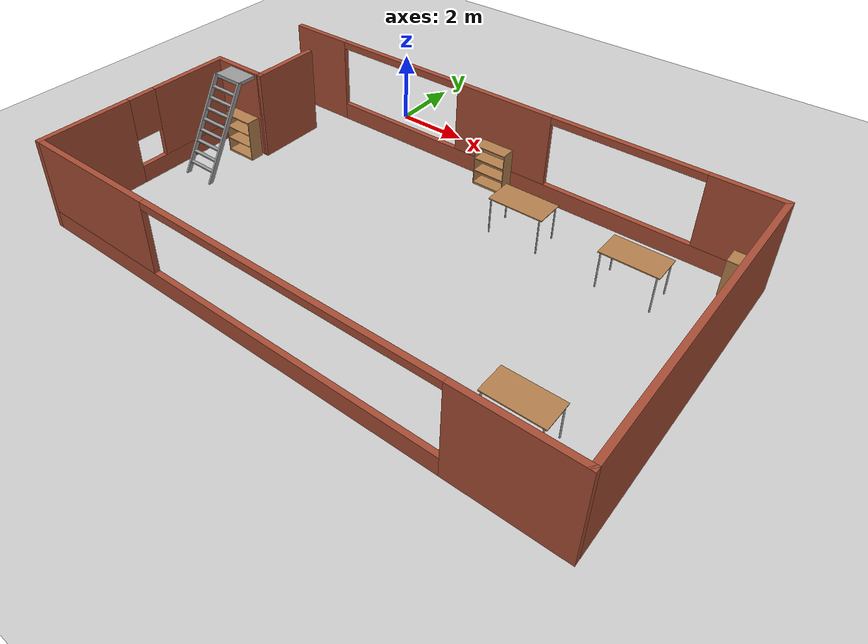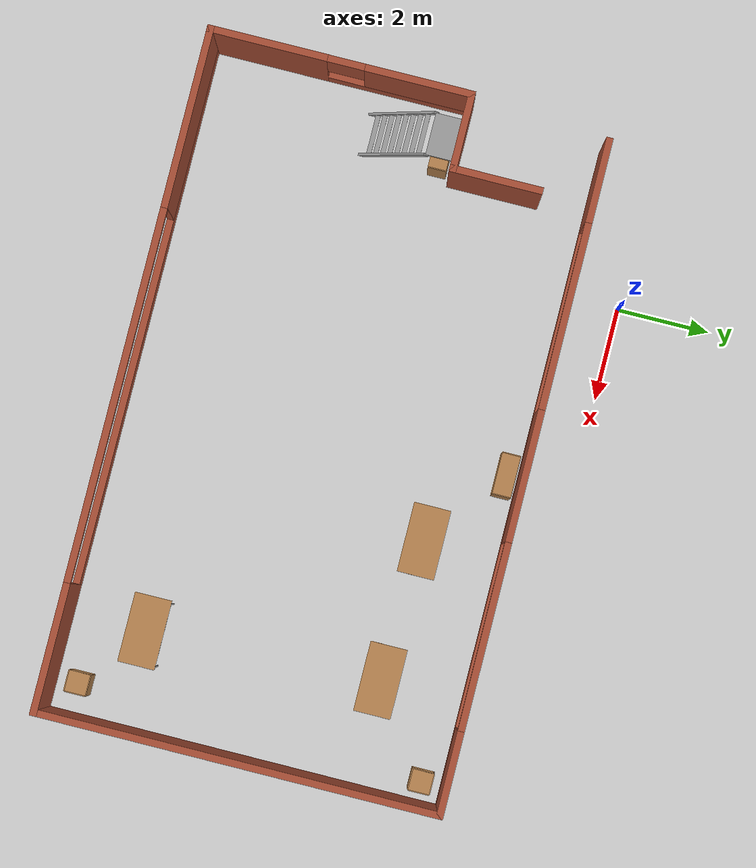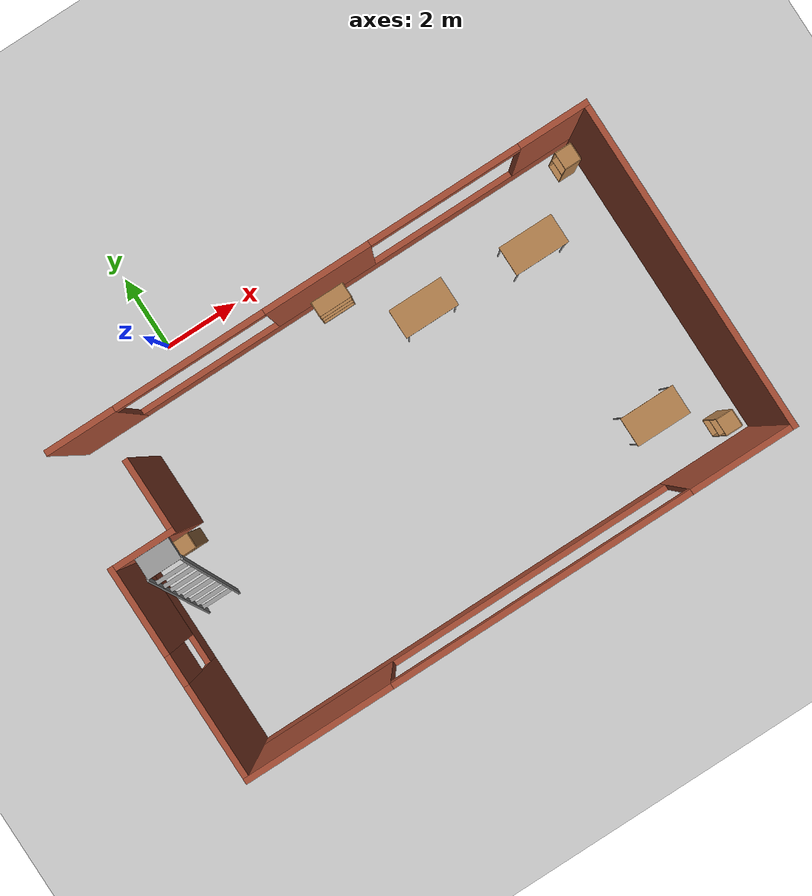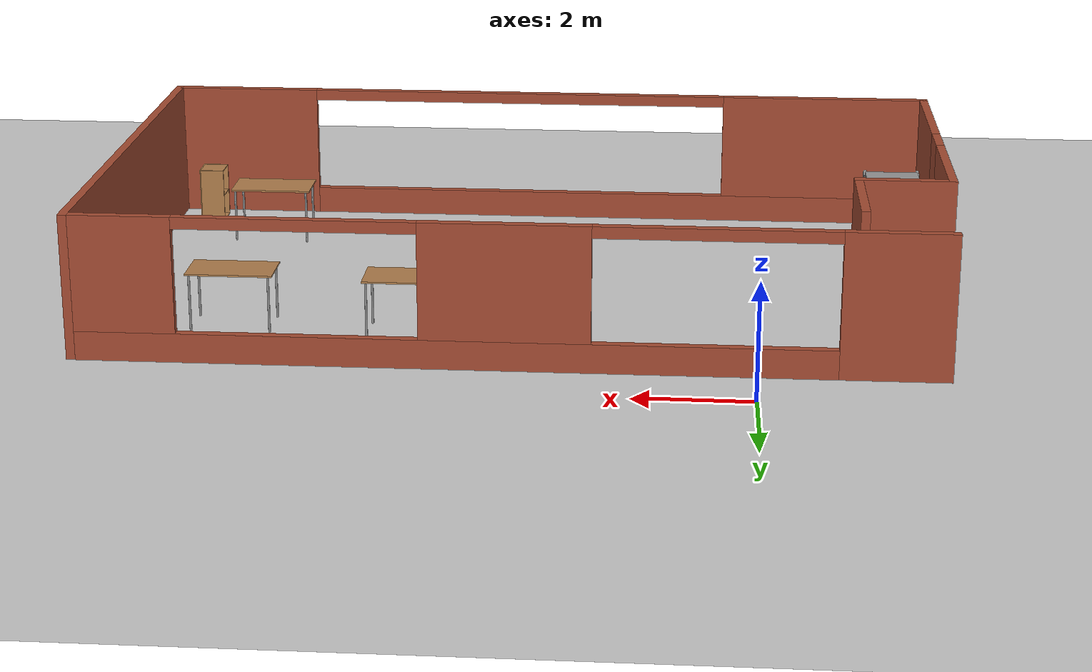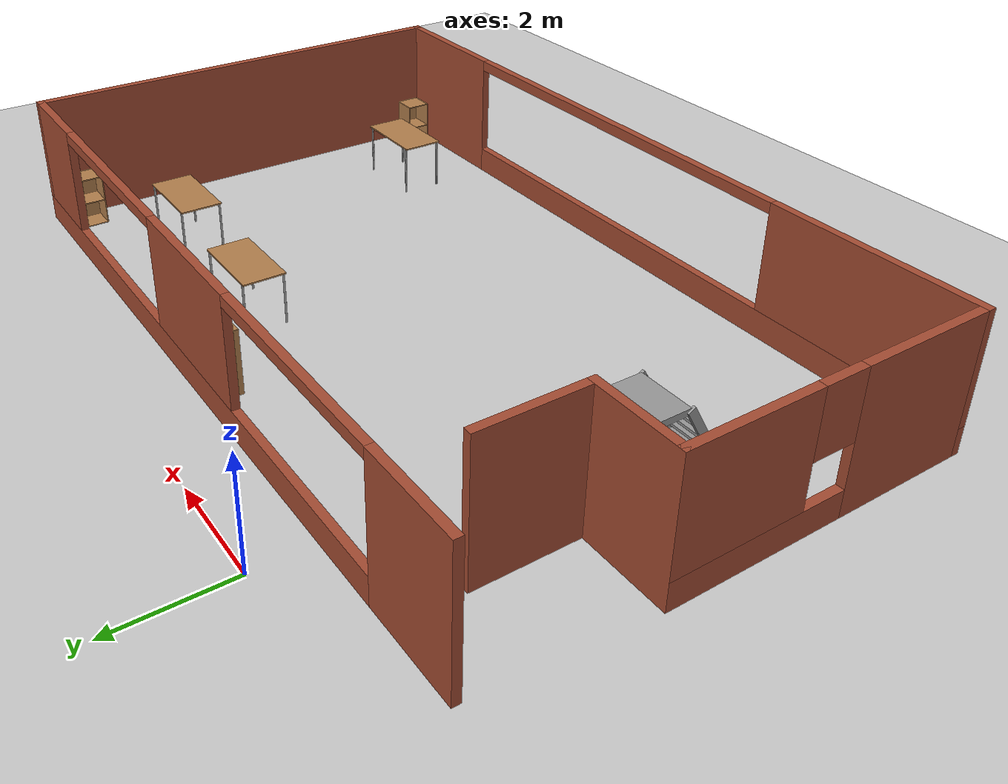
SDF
<sdf version="1.6">
 <world name="default">
  <light name="sun" type="directional">
   <pose>0 0 10 0 -0 0</pose>
   <diffuse>0.8 0.8 0.8 1</diffuse>
   <specular>0.2 0.2 0.2 1</specular>
   <attenuation>
    <range>1000</range>
    <constant>0.9</constant>
    <linear>0.01</linear>
    <quadratic>0.001</quadratic>
   </attenuation>
   <direction>-0.5 0.1 -0.9</direction>
  </light>
  <model name="ground_plane">
   <static>1</static>
   <link name="link">
    <collision name="collision">
     <geometry><plane><normal>0 0 1</normal><size>100 100</size></plane></geometry>
     <surface>
      <contact><collide_bitmask>65535</collide_bitmask></contact>
      <friction><ode><mu>100</mu><mu2>50</mu2></ode></friction>
     </surface>
    </collision>
    <visual name="visual">
     <cast_shadows>0</cast_shadows>
     <geometry><plane><normal>0 0 1</normal><size>100 100</size></plane></geometry>
     <material>
      <script><uri>file://media/materials/scripts/gazebo.material</uri><name>Gazebo/Grey</name></script>
     </material>
    </visual>
   </link>
  </model>
  <gravity>0 0 -9.8</gravity>
  <magnetic_field>6e-06 2.3e-05 -4.2e-05</magnetic_field>
  <atmosphere type="adiabatic"/>
  <physics name="default_physics" default="0" type="ode">
   <max_step_size>0.001</max_step_size>
   <real_time_factor>1</real_time_factor>
   <real_time_update_rate>1000</real_time_update_rate>
  </physics>
  <scene><ambient>0.4 0.4 0.4 1</ambient><background>0.7 0.7 0.7 1</background><shadows>1</shadows></scene>
  <spherical_coordinates>
   <surface_model>EARTH_WGS84</surface_model>
   <latitude_deg>0</latitude_deg>
   <longitude_deg>0</longitude_deg>
   <elevation>0</elevation>
   <heading_deg>0</heading_deg>
  </spherical_coordinates>
  <model name="BKSBR">
   <pose>3.96 -5.43 0 0 -0 0</pose>
   <link name="Wall_0">
    <pose>0.125 4.3 0 0 -0 0</pose>
    <visual name="Wall_0_Visual_0">
     <pose>-6.33425 0 1.25 0 -0 0</pose>
     <geometry><box><size>1.83149 0.15 2.5</size></box></geometry>
     <material>
      <script><uri>file://media/materials/scripts/gazebo.material</uri><name>Gazebo/Bricks</name></script>
      <ambient>1 1 1 1</ambient>
     </material>
     <meta><layer>0</layer></meta>
    </visual>
    <collision name="Wall_0_Collision_0">
     <geometry><box><size>1.83149 0.15 2.5</size></box></geometry>
     <pose>-6.33425 0 1.25 0 -0 0</pose>
    </collision>
    <visual name="Wall_0_Visual_1">
     <pose>0.915747 0 0.25 0 -0 0</pose>
     <geometry><box><size>12.6685 0.15 0.5</size></box></geometry>
     <material>
      <script><uri>file://media/materials/scripts/gazebo.material</uri><name>Gazebo/Bricks</name></script>
      <ambient>1 1 1 1</ambient>
     </material>
     <meta><layer>0</layer></meta>
    </visual>
    <collision name="Wall_0_Collision_1">
     <geometry><box><size>12.6685 0.15 0.5</size></box></geometry>
     <pose>0.915747 0 0.25 0 -0 0</pose>
    </collision>
    <visual name="Wall_0_Visual_2">
     <pose>-0.007696 0 1.5 0 -0 0</pose>
     <geometry><box><size>2.82162 0.15 2</size></box></geometry>
     <material>
      <script><uri>file://media/materials/scripts/gazebo.material</uri><name>Gazebo/Bricks</name></script>
      <ambient>1 1 1 1</ambient>
     </material>
     <meta><layer>0</layer></meta>
    </visual>
    <collision name="Wall_0_Collision_2">
     <geometry><box><size>2.82162 0.15 2</size></box></geometry>
     <pose>-0.007696 0 1.5 0 -0 0</pose>
    </collision>
    <visual name="Wall_0_Visual_3">
     <pose>6.32656 0 1.5 0 -0 0</pose>
     <geometry><box><size>1.84689 0.15 2</size></box></geometry>
     <material>
      <script><uri>file://media/materials/scripts/gazebo.material</uri><name>Gazebo/Bricks</name></script>
      <ambient>1 1 1 1</ambient>
     </material>
     <meta><layer>0</layer></meta>
    </visual>
    <collision name="Wall_0_Collision_3">
     <geometry><box><size>1.84689 0.15 2</size></box></geometry>
     <pose>6.32656 0 1.5 0 -0 0</pose>
    </collision>
    <visual name="Wall_0_Visual_4">
     <pose>-3.41851 0 2.4 0 -0 0</pose>
     <geometry><box><size>4 0.15 0.2</size></box></geometry>
     <material>
      <script><uri>file://media/materials/scripts/gazebo.material</uri><name>Gazebo/Bricks</name></script>
      <ambient>1 1 1 1</ambient>
     </material>
     <meta><layer>0</layer></meta>
    </visual>
    <collision name="Wall_0_Collision_4">
     <geometry><box><size>4 0.15 0.2</size></box></geometry>
     <pose>-3.41851 0 2.4 0 -0 0</pose>
    </collision>
    <visual name="Wall_0_Visual_5">
     <pose>3.40311 0 2.4 0 -0 0</pose>
     <geometry><box><size>4 0.15 0.2</size></box></geometry>
     <material>
      <script><uri>file://media/materials/scripts/gazebo.material</uri><name>Gazebo/Bricks</name></script>
      <ambient>1 1 1 1</ambient>
     </material>
     <meta><layer>0</layer></meta>
    </visual>
    <collision name="Wall_0_Collision_5">
     <geometry><box><size>4 0.15 0.2</size></box></geometry>
     <pose>3.40311 0 2.4 0 -0 0</pose>
    </collision>
   </link>
   <link name="Wall_1">
    <collision name="Wall_1_Collision">
     <geometry><box><size>8.75 0.15 2.5</size></box></geometry>
     <pose>0 0 1.25 0 -0 0</pose>
    </collision>
    <visual name="Wall_1_Visual">
     <pose>0 0 1.25 0 -0 0</pose>
     <geometry><box><size>8.75 0.15 2.5</size></box></geometry>
     <material>
      <script><uri>file://media/materials/scripts/gazebo.material</uri><name>Gazebo/Bricks</name></script>
      <ambient>1 1 1 1</ambient>
     </material>
     <meta><layer>0</layer></meta>
    </visual>
    <pose>7.3 0 0 0 0 -1.5708</pose>
   </link>
   <link name="Wall_2">
    <pose>0 -4.3 0 0 -0 3.14159</pose>
    <visual name="Wall_2_Visual_0">
     <pose>-5.96793 0 1.25 0 -0 0</pose>
     <geometry><box><size>2.81414 0.15 2.5</size></box></geometry>
     <material>
      <script><uri>file://media/materials/scripts/gazebo.material</uri><name>Gazebo/Bricks</name></script>
      <ambient>1 1 1 1</ambient>
     </material>
     <meta><layer>0</layer></meta>
    </visual>
    <collision name="Wall_2_Collision_0">
     <geometry><box><size>2.81414 0.15 2.5</size></box></geometry>
     <pose>-5.96793 0 1.25 0 -0 0</pose>
    </collision>
    <visual name="Wall_2_Visual_1">
     <pose>1.40707 0 0.25 0 -0 0</pose>
     <geometry><box><size>11.9359 0.15 0.5</size></box></geometry>
     <material>
      <script><uri>file://media/materials/scripts/gazebo.material</uri><name>Gazebo/Bricks</name></script>
      <ambient>1 1 1 1</ambient>
     </material>
     <meta><layer>0</layer></meta>
    </visual>
    <collision name="Wall_2_Collision_1">
     <geometry><box><size>11.9359 0.15 0.5</size></box></geometry>
     <pose>1.40707 0 0.25 0 -0 0</pose>
    </collision>
    <visual name="Wall_2_Visual_2">
     <pose>5.40707 0 1.5 0 -0 0</pose>
     <geometry><box><size>3.93586 0.15 2</size></box></geometry>
     <material>
      <script><uri>file://media/materials/scripts/gazebo.material</uri><name>Gazebo/Bricks</name></script>
      <ambient>1 1 1 1</ambient>
     </material>
     <meta><layer>0</layer></meta>
    </visual>
    <collision name="Wall_2_Collision_2">
     <geometry><box><size>3.93586 0.15 2</size></box></geometry>
     <pose>5.40707 0 1.5 0 -0 0</pose>
    </collision>
    <visual name="Wall_2_Visual_3">
     <pose>-0.560862 0 2.4 0 -0 0</pose>
     <geometry><box><size>8 0.15 0.2</size></box></geometry>
     <material>
      <script><uri>file://media/materials/scripts/gazebo.material</uri><name>Gazebo/Bricks</name></script>
      <ambient>1 1 1 1</ambient>
     </material>
     <meta><layer>0</layer></meta>
    </visual>
    <collision name="Wall_2_Collision_3">
     <geometry><box><size>8 0.15 0.2</size></box></geometry>
     <pose>-0.560862 0 2.4 0 -0 0</pose>
    </collision>
   </link>
   <link name="Wall_3">
    <pose>-7.3 -1.5 0 0 -0 1.5708</pose>
    <visual name="Wall_3_Visual_0">
     <pose>-1.58135 0 1.25 0 -0 0</pose>
     <geometry><box><size>2.58731 0.15 2.5</size></box></geometry>
     <material>
      <script><uri>file://media/materials/scripts/gazebo.material</uri><name>Gazebo/Bricks</name></script>
      <ambient>1 1 1 1</ambient>
     </material>
     <meta><layer>0</layer></meta>
    </visual>
    <collision name="Wall_3_Collision_0">
     <geometry><box><size>2.58731 0.15 2.5</size></box></geometry>
     <pose>-1.58135 0 1.25 0 -0 0</pose>
    </collision>
    <visual name="Wall_3_Visual_1">
     <pose>1.29365 0 0.25 0 -0 0</pose>
     <geometry><box><size>3.16269 0.15 0.5</size></box></geometry>
     <material>
      <script><uri>file://media/materials/scripts/gazebo.material</uri><name>Gazebo/Bricks</name></script>
      <ambient>1 1 1 1</ambient>
     </material>
     <meta><layer>0</layer></meta>
    </visual>
    <collision name="Wall_3_Collision_1">
     <geometry><box><size>3.16269 0.15 0.5</size></box></geometry>
     <pose>1.29365 0 0.25 0 -0 0</pose>
    </collision>
    <visual name="Wall_3_Visual_2">
     <pose>1.69365 0 1.5 0 -0 0</pose>
     <geometry><box><size>2.36269 0.15 2</size></box></geometry>
     <material>
      <script><uri>file://media/materials/scripts/gazebo.material</uri><name>Gazebo/Bricks</name></script>
      <ambient>1 1 1 1</ambient>
     </material>
     <meta><layer>0</layer></meta>
    </visual>
    <collision name="Wall_3_Collision_2">
     <geometry><box><size>2.36269 0.15 2</size></box></geometry>
     <pose>1.69365 0 1.5 0 -0 0</pose>
    </collision>
    <visual name="Wall_3_Visual_3">
     <pose>0.11231 0 1.9 0 -0 0</pose>
     <geometry><box><size>0.8 0.15 1.2</size></box></geometry>
     <material>
      <script><uri>file://media/materials/scripts/gazebo.material</uri><name>Gazebo/Bricks</name></script>
      <ambient>1 1 1 1</ambient>
     </material>
     <meta><layer>0</layer></meta>
    </visual>
    <collision name="Wall_3_Collision_3">
     <geometry><box><size>0.8 0.15 1.2</size></box></geometry>
     <pose>0.11231 0 1.9 0 -0 0</pose>
    </collision>
   </link>
   <link name="Wall_4">
    <collision name="Wall_4_Collision">
     <geometry><box><size>1.75 0.15 2.5</size></box></geometry>
     <pose>0 0 1.25 0 -0 0</pose>
    </collision>
    <visual name="Wall_4_Visual">
     <pose>0 0 1.25 0 -0 0</pose>
     <geometry><box><size>1.75 0.15 2.5</size></box></geometry>
     <material>
      <script><uri>file://media/materials/scripts/gazebo.material</uri><name>Gazebo/Bricks</name></script>
      <ambient>1 1 1 1</ambient>
     </material>
     <meta><layer>0</layer></meta>
    </visual>
    <pose>-6.5 1.3 0 0 -0 0</pose>
   </link>
   <link name="Wall_5">
    <collision name="Wall_5_Collision">
     <geometry><box><size>2 0.15 2.5</size></box></geometry>
     <pose>0 0 1.25 0 -0 0</pose>
    </collision>
    <visual name="Wall_5_Visual">
     <pose>0 0 1.25 0 -0 0</pose>
     <geometry><box><size>2 0.15 2.5</size></box></geometry>
     <material>
      <script><uri>file://media/materials/scripts/gazebo.material</uri><name>Gazebo/Bricks</name></script>
      <ambient>1 1 1 1</ambient>
     </material>
     <meta><layer>0</layer></meta>
    </visual>
    <pose>-5.7 2.225 0 0 -0 1.5708</pose>
   </link>
   <static>1</static>
  </model>
  <model name="bookshelf">
   <static>1</static>
   <link name="link">
    <inertial><mass>1</mass></inertial>
    <collision name="back">
     <pose>0 0.005 0.6 0 -0 0</pose>
     <geometry><box><size>0.9 0.01 1.2</size></box></geometry>
    </collision>
    <visual name="visual1">
     <pose>0 0.005 0.6 0 -0 0</pose>
     <geometry><box><size>0.9 0.01 1.2</size></box></geometry>
     <material>
      <script><uri>file://media/materials/scripts/gazebo.material</uri><name>Gazebo/Wood</name></script>
     </material>
    </visual>
    <collision name="left_side">
     <pose>0.45 -0.195 0.6 0 -0 0</pose>
     <geometry><box><size>0.02 0.4 1.2</size></box></geometry>
    </collision>
    <visual name="visual2">
     <pose>0.45 -0.195 0.6 0 -0 0</pose>
     <geometry><box><size>0.02 0.4 1.2</size></box></geometry>
     <material>
      <script><uri>file://media/materials/scripts/gazebo.material</uri><name>Gazebo/Wood</name></script>
     </material>
    </visual>
    <collision name="right_side">
     <pose>-0.45 -0.195 0.6 0 -0 0</pose>
     <geometry><box><size>0.02 0.4 1.2</size></box></geometry>
    </collision>
    <visual name="visual3">
     <pose>-0.45 -0.195 0.6 0 -0 0</pose>
     <geometry><box><size>0.02 0.4 1.2</size></box></geometry>
     <material>
      <script><uri>file://media/materials/scripts/gazebo.material</uri><name>Gazebo/Wood</name></script>
     </material>
    </visual>
    <collision name="bottom">
     <pose>0 -0.195 0.03 0 -0 0</pose>
     <geometry><box><size>0.88 0.4 0.06</size></box></geometry>
    </collision>
    <visual name="visual4">
     <pose>0 -0.195 0.03 0 -0 0</pose>
     <geometry><box><size>0.88 0.4 0.06</size></box></geometry>
     <material>
      <script><uri>file://media/materials/scripts/gazebo.material</uri><name>Gazebo/Wood</name></script>
     </material>
    </visual>
    <collision name="top">
     <pose>0 -0.195 1.19 0 -0 0</pose>
     <geometry><box><size>0.88 0.4 0.02</size></box></geometry>
    </collision>
    <visual name="visual5">
     <pose>0 -0.195 1.19 0 -0 0</pose>
     <geometry><box><size>0.88 0.4 0.02</size></box></geometry>
     <material>
      <script><uri>file://media/materials/scripts/gazebo.material</uri><name>Gazebo/Wood</name></script>
     </material>
    </visual>
    <collision name="low_shelf">
     <pose>0 -0.195 0.43 0 -0 0</pose>
     <geometry><box><size>0.88 0.4 0.02</size></box></geometry>
    </collision>
    <visual name="visual6">
     <pose>0 -0.195 0.43 0 -0 0</pose>
     <geometry><box><size>0.88 0.4 0.02</size></box></geometry>
     <material>
      <script><uri>file://media/materials/scripts/gazebo.material</uri><name>Gazebo/Wood</name></script>
     </material>
    </visual>
    <collision name="high_shelf">
     <pose>0 -0.195 0.8 0 -0 0</pose>
     <geometry><box><size>0.88 0.4 0.02</size></box></geometry>
    </collision>
    <visual name="visual7">
     <pose>0 -0.195 0.8 0 -0 0</pose>
     <geometry><box><size>0.88 0.4 0.02</size></box></geometry>
     <material>
      <script><uri>file://media/materials/scripts/gazebo.material</uri><name>Gazebo/Wood</name></script>
     </material>
    </visual>
   </link>
   <pose>-2.27914 -4.27965 0 0 -0 0</pose>
  </model>
  <model name="cabinet">
   <static>1</static>
   <link name="cabinet_bottom_plate">
    <inertial>
     <pose>0 0 -1 0 -0 0</pose>
     <inertia><ixx>2.05</ixx><ixy>0</ixy><ixz>0</ixz><iyy>2.05</iyy><iyz>0</iyz><izz>2.05</izz></inertia>
     <mass>25</mass>
    </inertial>
    <collision name="cabinet_bottom_plate_geom">
     <pose>0 0 0.01 0 -0 0</pose>
     <geometry><box><size>0.45 0.45 0.02</size></box></geometry>
    </collision>
    <visual name="cabinet_bottom_plate_geom_visual">
     <pose>0 0 0.01 0 -0 0</pose>
     <geometry><box><size>0.45 0.45 0.02</size></box></geometry>
     <material>
      <script><uri>file://media/materials/scripts/gazebo.material</uri><name>Gazebo/Wood</name></script>
     </material>
    </visual>
    <collision name="cabinet_bottom_plate_geom_cabinet_back_plate">
     <pose>0.235 0 0.51 0 -0 0</pose>
     <geometry><box><size>0.02 0.45 1.02</size></box></geometry>
    </collision>
    <visual name="cabinet_bottom_plate_geom_cabinet_back_plate_visual">
     <pose>0.235 0 0.51 0 -0 0</pose>
     <geometry><box><size>0.02 0.45 1.02</size></box></geometry>
     <material>
      <script><uri>file://media/materials/scripts/gazebo.material</uri><name>Gazebo/Wood</name></script>
     </material>
    </visual>
    <collision name="cabinet_bottom_plate_geom_cabinet_left_plate">
     <pose>0 0.235 0.51 0 -0 0</pose>
     <geometry><box><size>0.45 0.02 1.02</size></box></geometry>
    </collision>
    <visual name="cabinet_bottom_plate_geom_cabinet_left_plate_visual">
     <pose>0 0.235 0.51 0 -0 0</pose>
     <geometry><box><size>0.45 0.02 1.02</size></box></geometry>
     <material>
      <script><uri>file://media/materials/scripts/gazebo.material</uri><name>Gazebo/Wood</name></script>
     </material>
    </visual>
    <collision name="cabinet_bottom_plate_geom_cabinet_middle_plate">
     <pose>0 0 0.51 0 -0 0</pose>
     <geometry><box><size>0.45 0.45 0.02</size></box></geometry>
    </collision>
    <visual name="cabinet_bottom_plate_geom_cabinet_middle_plate_visual">
     <pose>0 0 0.51 0 -0 0</pose>
     <geometry><box><size>0.45 0.45 0.02</size></box></geometry>
     <material>
      <script><uri>file://media/materials/scripts/gazebo.material</uri><name>Gazebo/Wood</name></script>
     </material>
    </visual>
    <collision name="cabinet_bottom_plate_geom_cabinet_right_plate">
     <pose>0 -0.235 0.51 0 -0 0</pose>
     <geometry><box><size>0.45 0.02 1.02</size></box></geometry>
    </collision>
    <visual name="cabinet_bottom_plate_geom_cabinet_right_plate_visual">
     <pose>0 -0.235 0.51 0 -0 0</pose>
     <geometry><box><size>0.45 0.02 1.02</size></box></geometry>
     <material>
      <script><uri>file://media/materials/scripts/gazebo.material</uri><name>Gazebo/Wood</name></script>
     </material>
    </visual>
    <collision name="cabinet_bottom_plate_geom_cabinet_top_plate">
     <pose>0 0 1.01 0 -0 0</pose>
     <geometry><box><size>0.45 0.45 0.02</size></box></geometry>
    </collision>
    <visual name="cabinet_bottom_plate_geom_cabinet_top_plate_visual">
     <pose>0 0 1.01 0 -0 0</pose>
     <geometry><box><size>0.45 0.45 0.02</size></box></geometry>
     <material>
      <script><uri>file://media/materials/scripts/gazebo.material</uri><name>Gazebo/Wood</name></script>
     </material>
    </visual>
   </link>
   <pose>10.7543 -1.64112 0 0 -0 0</pose>
  </model>
  <model name="cabinet_0">
   <static>1</static>
   <link name="cabinet_bottom_plate">
    <inertial>
     <pose>0 0 -1 0 -0 0</pose>
     <inertia><ixx>2.05</ixx><ixy>0</ixy><ixz>0</ixz><iyy>2.05</iyy><iyz>0</iyz><izz>2.05</izz></inertia>
     <mass>25</mass>
    </inertial>
    <collision name="cabinet_bottom_plate_geom">
     <pose>0 0 0.01 0 -0 0</pose>
     <geometry><box><size>0.45 0.45 0.02</size></box></geometry>
    </collision>
    <visual name="cabinet_bottom_plate_geom_visual">
     <pose>0 0 0.01 0 -0 0</pose>
     <geometry><box><size>0.45 0.45 0.02</size></box></geometry>
     <material>
      <script><uri>file://media/materials/scripts/gazebo.material</uri><name>Gazebo/Wood</name></script>
     </material>
    </visual>
    <collision name="cabinet_bottom_plate_geom_cabinet_back_plate">
     <pose>0.235 0 0.51 0 -0 0</pose>
     <geometry><box><size>0.02 0.45 1.02</size></box></geometry>
    </collision>
    <visual name="cabinet_bottom_plate_geom_cabinet_back_plate_visual">
     <pose>0.235 0 0.51 0 -0 0</pose>
     <geometry><box><size>0.02 0.45 1.02</size></box></geometry>
     <material>
      <script><uri>file://media/materials/scripts/gazebo.material</uri><name>Gazebo/Wood</name></script>
     </material>
    </visual>
    <collision name="cabinet_bottom_plate_geom_cabinet_left_plate">
     <pose>0 0.235 0.51 0 -0 0</pose>
     <geometry><box><size>0.45 0.02 1.02</size></box></geometry>
    </collision>
    <visual name="cabinet_bottom_plate_geom_cabinet_left_plate_visual">
     <pose>0 0.235 0.51 0 -0 0</pose>
     <geometry><box><size>0.45 0.02 1.02</size></box></geometry>
     <material>
      <script><uri>file://media/materials/scripts/gazebo.material</uri><name>Gazebo/Wood</name></script>
     </material>
    </visual>
    <collision name="cabinet_bottom_plate_geom_cabinet_middle_plate">
     <pose>0 0 0.51 0 -0 0</pose>
     <geometry><box><size>0.45 0.45 0.02</size></box></geometry>
    </collision>
    <visual name="cabinet_bottom_plate_geom_cabinet_middle_plate_visual">
     <pose>0 0 0.51 0 -0 0</pose>
     <geometry><box><size>0.45 0.45 0.02</size></box></geometry>
     <material>
      <script><uri>file://media/materials/scripts/gazebo.material</uri><name>Gazebo/Wood</name></script>
     </material>
    </visual>
    <collision name="cabinet_bottom_plate_geom_cabinet_right_plate">
     <pose>0 -0.235 0.51 0 -0 0</pose>
     <geometry><box><size>0.45 0.02 1.02</size></box></geometry>
    </collision>
    <visual name="cabinet_bottom_plate_geom_cabinet_right_plate_visual">
     <pose>0 -0.235 0.51 0 -0 0</pose>
     <geometry><box><size>0.45 0.02 1.02</size></box></geometry>
     <material>
      <script><uri>file://media/materials/scripts/gazebo.material</uri><name>Gazebo/Wood</name></script>
     </material>
    </visual>
    <collision name="cabinet_bottom_plate_geom_cabinet_top_plate">
     <pose>0 0 1.01 0 -0 0</pose>
     <geometry><box><size>0.45 0.45 0.02</size></box></geometry>
    </collision>
    <visual name="cabinet_bottom_plate_geom_cabinet_top_plate_visual">
     <pose>0 0 1.01 0 -0 0</pose>
     <geometry><box><size>0.45 0.45 0.02</size></box></geometry>
     <material>
      <script><uri>file://media/materials/scripts/gazebo.material</uri><name>Gazebo/Wood</name></script>
     </material>
    </visual>
   </link>
   <pose>10.522 -9.1401 0 0 -0 0</pose>
  </model>
  <model name="table">
   <static>1</static>
   <link name="link">
    <collision name="surface">
     <pose>0 0 1 0 -0 0</pose>
     <geometry><box><size>1.5 0.8 0.03</size></box></geometry>
     <surface><friction><ode><mu>0.6</mu><mu2>0.6</mu2></ode></friction></surface>
    </collision>
    <visual name="visual1">
     <pose>0 0 1 0 -0 0</pose>
     <geometry><box><size>1.5 0.8 0.03</size></box></geometry>
     <material>
      <script><uri>file://media/materials/scripts/gazebo.material</uri><name>Gazebo/Wood</name></script>
     </material>
    </visual>
    <collision name="front_left_leg">
     <pose>0.68 0.38 0.5 0 -0 0</pose>
     <geometry><cylinder><radius>0.02</radius><length>1</length></cylinder></geometry>
    </collision>
    <visual name="front_left_leg">
     <pose>0.68 0.38 0.5 0 -0 0</pose>
     <geometry><cylinder><radius>0.02</radius><length>1</length></cylinder></geometry>
     <material>
      <script><uri>file://media/materials/scripts/gazebo.material</uri><name>Gazebo/Grey</name></script>
     </material>
    </visual>
    <collision name="front_right_leg">
     <pose>0.68 -0.38 0.5 0 -0 0</pose>
     <geometry><cylinder><radius>0.02</radius><length>1</length></cylinder></geometry>
    </collision>
    <visual name="front_right_leg">
     <pose>0.68 -0.38 0.5 0 -0 0</pose>
     <geometry><cylinder><radius>0.02</radius><length>1</length></cylinder></geometry>
     <material>
      <script><uri>file://media/materials/scripts/gazebo.material</uri><name>Gazebo/Grey</name></script>
     </material>
    </visual>
    <collision name="back_right_leg">
     <pose>-0.68 -0.38 0.5 0 -0 0</pose>
     <geometry><cylinder><radius>0.02</radius><length>1</length></cylinder></geometry>
    </collision>
    <visual name="back_right_leg">
     <pose>-0.68 -0.38 0.5 0 -0 0</pose>
     <geometry><cylinder><radius>0.02</radius><length>1</length></cylinder></geometry>
     <material>
      <script><uri>file://media/materials/scripts/gazebo.material</uri><name>Gazebo/Grey</name></script>
     </material>
    </visual>
    <collision name="back_left_leg">
     <pose>-0.68 0.38 0.5 0 -0 0</pose>
     <geometry><cylinder><radius>0.02</radius><length>1</length></cylinder></geometry>
    </collision>
    <visual name="back_left_leg">
     <pose>-0.68 0.38 0.5 0 -0 0</pose>
     <geometry><cylinder><radius>0.02</radius><length>1</length></cylinder></geometry>
     <material>
      <script><uri>file://media/materials/scripts/gazebo.material</uri><name>Gazebo/Grey</name></script>
     </material>
    </visual>
   </link>
   <pose>8.90838 -2.984 0 0 -0 0</pose>
  </model>
  <model name="table_0">
   <static>1</static>
   <link name="link">
    <collision name="surface">
     <pose>0 0 1 0 -0 0</pose>
     <geometry><box><size>1.5 0.8 0.03</size></box></geometry>
     <surface><friction><ode><mu>0.6</mu><mu2>0.6</mu2></ode></friction></surface>
    </collision>
    <visual name="visual1">
     <pose>0 0 1 0 -0 0</pose>
     <geometry><box><size>1.5 0.8 0.03</size></box></geometry>
     <material>
      <script><uri>file://media/materials/scripts/gazebo.material</uri><name>Gazebo/Wood</name></script>
     </material>
    </visual>
    <collision name="front_left_leg">
     <pose>0.68 0.38 0.5 0 -0 0</pose>
     <geometry><cylinder><radius>0.02</radius><length>1</length></cylinder></geometry>
    </collision>
    <visual name="front_left_leg">
     <pose>0.68 0.38 0.5 0 -0 0</pose>
     <geometry><cylinder><radius>0.02</radius><length>1</length></cylinder></geometry>
     <material>
      <script><uri>file://media/materials/scripts/gazebo.material</uri><name>Gazebo/Grey</name></script>
     </material>
    </visual>
    <collision name="front_right_leg">
     <pose>0.68 -0.38 0.5 0 -0 0</pose>
     <geometry><cylinder><radius>0.02</radius><length>1</length></cylinder></geometry>
    </collision>
    <visual name="front_right_leg">
     <pose>0.68 -0.38 0.5 0 -0 0</pose>
     <geometry><cylinder><radius>0.02</radius><length>1</length></cylinder></geometry>
     <material>
      <script><uri>file://media/materials/scripts/gazebo.material</uri><name>Gazebo/Grey</name></script>
     </material>
    </visual>
    <collision name="back_right_leg">
     <pose>-0.68 -0.38 0.5 0 -0 0</pose>
     <geometry><cylinder><radius>0.02</radius><length>1</length></cylinder></geometry>
    </collision>
    <visual name="back_right_leg">
     <pose>-0.68 -0.38 0.5 0 -0 0</pose>
     <geometry><cylinder><radius>0.02</radius><length>1</length></cylinder></geometry>
     <material>
      <script><uri>file://media/materials/scripts/gazebo.material</uri><name>Gazebo/Grey</name></script>
     </material>
    </visual>
    <collision name="back_left_leg">
     <pose>-0.68 0.38 0.5 0 -0 0</pose>
     <geometry><cylinder><radius>0.02</radius><length>1</length></cylinder></geometry>
    </collision>
    <visual name="back_left_leg">
     <pose>-0.68 0.38 0.5 0 -0 0</pose>
     <geometry><cylinder><radius>0.02</radius><length>1</length></cylinder></geometry>
     <material>
      <script><uri>file://media/materials/scripts/gazebo.material</uri><name>Gazebo/Grey</name></script>
     </material>
    </visual>
   </link>
   <pose>9.1241 -8.03764 0 0 -0 0</pose>
  </model>
  <model name="table_1">
   <static>1</static>
   <link name="link">
    <collision name="surface">
     <pose>0 0 1 0 -0 0</pose>
     <geometry><box><size>1.5 0.8 0.03</size></box></geometry>
     <surface><friction><ode><mu>0.6</mu><mu2>0.6</mu2></ode></friction></surface>
    </collision>
    <visual name="visual1">
     <pose>0 0 1 0 -0 0</pose>
     <geometry><box><size>1.5 0.8 0.03</size></box></geometry>
     <material>
      <script><uri>file://media/materials/scripts/gazebo.material</uri><name>Gazebo/Wood</name></script>
     </material>
    </visual>
    <collision name="front_left_leg">
     <pose>0.68 0.38 0.5 0 -0 0</pose>
     <geometry><cylinder><radius>0.02</radius><length>1</length></cylinder></geometry>
    </collision>
    <visual name="front_left_leg">
     <pose>0.68 0.38 0.5 0 -0 0</pose>
     <geometry><cylinder><radius>0.02</radius><length>1</length></cylinder></geometry>
     <material>
      <script><uri>file://media/materials/scripts/gazebo.material</uri><name>Gazebo/Grey</name></script>
     </material>
    </visual>
    <collision name="front_right_leg">
     <pose>0.68 -0.38 0.5 0 -0 0</pose>
     <geometry><cylinder><radius>0.02</radius><length>1</length></cylinder></geometry>
    </collision>
    <visual name="front_right_leg">
     <pose>0.68 -0.38 0.5 0 -0 0</pose>
     <geometry><cylinder><radius>0.02</radius><length>1</length></cylinder></geometry>
     <material>
      <script><uri>file://media/materials/scripts/gazebo.material</uri><name>Gazebo/Grey</name></script>
     </material>
    </visual>
    <collision name="back_right_leg">
     <pose>-0.68 -0.38 0.5 0 -0 0</pose>
     <geometry><cylinder><radius>0.02</radius><length>1</length></cylinder></geometry>
    </collision>
    <visual name="back_right_leg">
     <pose>-0.68 -0.38 0.5 0 -0 0</pose>
     <geometry><cylinder><radius>0.02</radius><length>1</length></cylinder></geometry>
     <material>
      <script><uri>file://media/materials/scripts/gazebo.material</uri><name>Gazebo/Grey</name></script>
     </material>
    </visual>
    <collision name="back_left_leg">
     <pose>-0.68 0.38 0.5 0 -0 0</pose>
     <geometry><cylinder><radius>0.02</radius><length>1</length></cylinder></geometry>
    </collision>
    <visual name="back_left_leg">
     <pose>-0.68 0.38 0.5 0 -0 0</pose>
     <geometry><cylinder><radius>0.02</radius><length>1</length></cylinder></geometry>
     <material>
      <script><uri>file://media/materials/scripts/gazebo.material</uri><name>Gazebo/Grey</name></script>
     </material>
    </visual>
   </link>
   <pose>5.85351 -2.81194 0 0 -0 0</pose>
  </model>
  <model name="ladder_60deg_0rails">
   <static>1</static>
   <link name="step0">
    <pose>0 0.15396 0.266667 0 -0 0</pose>
    <inertial>
     <mass>9.75482</mass>
     <inertia>
      <ixx>0.00957124</ixx>
      <iyy>0.65963</iyy>
      <izz>0.666842</izz>
      <ixy>0</ixy>
      <ixz>0</ixz>
      <iyz>0</iyz>
     </inertia>
    </inertial>
    <collision name="collision"><geometry><box><size>0.9 0.1016 0.0381</size></box></geometry></collision>
    <visual name="visual">
     <geometry><box><size>0.9 0.1016 0.0381</size></box></geometry>
     <material>
      <script><uri>file://media/materials/scripts/gazebo.material</uri><name>Gazebo/Grey</name></script>
     </material>
    </visual>
   </link>
   <link name="step1">
    <pose>0 0.30792 0.533333 0 -0 0</pose>
    <inertial>
     <mass>9.75482</mass>
     <inertia>
      <ixx>0.00957124</ixx>
      <iyy>0.65963</iyy>
      <izz>0.666842</izz>
      <ixy>0</ixy>
      <ixz>0</ixz>
      <iyz>0</iyz>
     </inertia>
    </inertial>
    <collision name="collision"><geometry><box><size>0.9 0.1016 0.0381</size></box></geometry></collision>
    <visual name="visual">
     <geometry><box><size>0.9 0.1016 0.0381</size></box></geometry>
     <material>
      <script><uri>file://media/materials/scripts/gazebo.material</uri><name>Gazebo/Grey</name></script>
     </material>
    </visual>
   </link>
   <link name="step2">
    <pose>0 0.46188 0.8 0 -0 0</pose>
    <inertial>
     <mass>9.75482</mass>
     <inertia>
      <ixx>0.00957124</ixx>
      <iyy>0.65963</iyy>
      <izz>0.666842</izz>
      <ixy>0</ixy>
      <ixz>0</ixz>
      <iyz>0</iyz>
     </inertia>
    </inertial>
    <collision name="collision"><geometry><box><size>0.9 0.1016 0.0381</size></box></geometry></collision>
    <visual name="visual">
     <geometry><box><size>0.9 0.1016 0.0381</size></box></geometry>
     <material>
      <script><uri>file://media/materials/scripts/gazebo.material</uri><name>Gazebo/Grey</name></script>
     </material>
    </visual>
   </link>
   <link name="step3">
    <pose>0 0.61584 1.06667 0 -0 0</pose>
    <inertial>
     <mass>9.75482</mass>
     <inertia>
      <ixx>0.00957124</ixx>
      <iyy>0.65963</iyy>
      <izz>0.666842</izz>
      <ixy>0</ixy>
      <ixz>0</ixz>
      <iyz>0</iyz>
     </inertia>
    </inertial>
    <collision name="collision"><geometry><box><size>0.9 0.1016 0.0381</size></box></geometry></collision>
    <visual name="visual">
     <geometry><box><size>0.9 0.1016 0.0381</size></box></geometry>
     <material>
      <script><uri>file://media/materials/scripts/gazebo.material</uri><name>Gazebo/Grey</name></script>
     </material>
    </visual>
   </link>
   <link name="step4">
    <pose>0 0.7698 1.33333 0 -0 0</pose>
    <inertial>
     <mass>9.75482</mass>
     <inertia>
      <ixx>0.00957124</ixx>
      <iyy>0.65963</iyy>
      <izz>0.666842</izz>
      <ixy>0</ixy>
      <ixz>0</ixz>
      <iyz>0</iyz>
     </inertia>
    </inertial>
    <collision name="collision"><geometry><box><size>0.9 0.1016 0.0381</size></box></geometry></collision>
    <visual name="visual">
     <geometry><box><size>0.9 0.1016 0.0381</size></box></geometry>
     <material>
      <script><uri>file://media/materials/scripts/gazebo.material</uri><name>Gazebo/Grey</name></script>
     </material>
    </visual>
   </link>
   <link name="step5">
    <pose>0 0.92376 1.6 0 -0 0</pose>
    <inertial>
     <mass>9.75482</mass>
     <inertia>
      <ixx>0.00957124</ixx>
      <iyy>0.65963</iyy>
      <izz>0.666842</izz>
      <ixy>0</ixy>
      <ixz>0</ixz>
      <iyz>0</iyz>
     </inertia>
    </inertial>
    <collision name="collision"><geometry><box><size>0.9 0.1016 0.0381</size></box></geometry></collision>
    <visual name="visual">
     <geometry><box><size>0.9 0.1016 0.0381</size></box></geometry>
     <material>
      <script><uri>file://media/materials/scripts/gazebo.material</uri><name>Gazebo/Grey</name></script>
     </material>
    </visual>
   </link>
   <link name="step6">
    <pose>0 1.07772 1.86667 0 -0 0</pose>
    <inertial>
     <mass>9.75482</mass>
     <inertia>
      <ixx>0.00957124</ixx>
      <iyy>0.65963</iyy>
      <izz>0.666842</izz>
      <ixy>0</ixy>
      <ixz>0</ixz>
      <iyz>0</iyz>
     </inertia>
    </inertial>
    <collision name="collision"><geometry><box><size>0.9 0.1016 0.0381</size></box></geometry></collision>
    <visual name="visual">
     <geometry><box><size>0.9 0.1016 0.0381</size></box></geometry>
     <material>
      <script><uri>file://media/materials/scripts/gazebo.material</uri><name>Gazebo/Grey</name></script>
     </material>
    </visual>
   </link>
   <link name="step7">
    <pose>0 1.23168 2.13333 0 -0 0</pose>
    <inertial>
     <mass>9.75482</mass>
     <inertia>
      <ixx>0.00957124</ixx>
      <iyy>0.65963</iyy>
      <izz>0.666842</izz>
      <ixy>0</ixy>
      <ixz>0</ixz>
      <iyz>0</iyz>
     </inertia>
    </inertial>
    <collision name="collision"><geometry><box><size>0.9 0.1016 0.0381</size></box></geometry></collision>
    <visual name="visual">
     <geometry><box><size>0.9 0.1016 0.0381</size></box></geometry>
     <material>
      <script><uri>file://media/materials/scripts/gazebo.material</uri><name>Gazebo/Grey</name></script>
     </material>
    </visual>
   </link>
   <link name="landing">
    <pose>0 1.68564 2.4 0 -0 0</pose>
    <inertial>
     <mass>57.6072</mass>
     <inertia><ixx>1.73518</ixx><iyy>3.89545</iyy><izz>5.6167</izz><ixy>0</ixy><ixz>0</ixz><iyz>0</iyz></inertia>
    </inertial>
    <collision name="collision"><geometry><box><size>0.9 0.6 0.1016</size></box></geometry></collision>
    <visual name="visual">
     <geometry><box><size>0.9 0.6 0.1016</size></box></geometry>
     <material>
      <script><uri>file://media/materials/scripts/gazebo.material</uri><name>Gazebo/Grey</name></script>
     </material>
    </visual>
   </link>
   <link name="left_side_wall">
    <pose>-0.45 0.69282 1.2 1.0472 -0 0</pose>
    <collision name="collision"><geometry><box><size>0.0508 2.85128 0.13</size></box></geometry></collision>
    <visual name="visual">
     <geometry><box><size>0.0508 2.85128 0.13</size></box></geometry>
     <material>
      <script><uri>file://media/materials/scripts/gazebo.material</uri><name>Gazebo/Grey</name></script>
     </material>
    </visual>
   </link>
   <link name="right_side_wall">
    <pose>0.45 0.69282 1.2 1.0472 -0 0</pose>
    <collision name="collision"><geometry><box><size>0.0508 2.85128 0.13</size></box></geometry></collision>
    <visual name="visual">
     <geometry><box><size>0.0508 2.85128 0.13</size></box></geometry>
     <material>
      <script><uri>file://media/materials/scripts/gazebo.material</uri><name>Gazebo/Grey</name></script>
     </material>
    </visual>
   </link>
   <pose>-2.34085 -6.14426 0 0 -0 0</pose>
  </model>
  <model name="bookshelf_0">
   <static>1</static>
   <link name="link">
    <inertial><mass>1</mass></inertial>
    <collision name="back">
     <pose>0 0.005 0.6 0 -0 0</pose>
     <geometry><box><size>0.9 0.01 1.2</size></box></geometry>
    </collision>
    <visual name="visual1">
     <pose>0 0.005 0.6 0 -0 0</pose>
     <geometry><box><size>0.9 0.01 1.2</size></box></geometry>
     <material>
      <script><uri>file://media/materials/scripts/gazebo.material</uri><name>Gazebo/Wood</name></script>
     </material>
    </visual>
    <collision name="left_side">
     <pose>0.45 -0.195 0.6 0 -0 0</pose>
     <geometry><box><size>0.02 0.4 1.2</size></box></geometry>
    </collision>
    <visual name="visual2">
     <pose>0.45 -0.195 0.6 0 -0 0</pose>
     <geometry><box><size>0.02 0.4 1.2</size></box></geometry>
     <material>
      <script><uri>file://media/materials/scripts/gazebo.material</uri><name>Gazebo/Wood</name></script>
     </material>
    </visual>
    <collision name="right_side">
     <pose>-0.45 -0.195 0.6 0 -0 0</pose>
     <geometry><box><size>0.02 0.4 1.2</size></box></geometry>
    </collision>
    <visual name="visual3">
     <pose>-0.45 -0.195 0.6 0 -0 0</pose>
     <geometry><box><size>0.02 0.4 1.2</size></box></geometry>
     <material>
      <script><uri>file://media/materials/scripts/gazebo.material</uri><name>Gazebo/Wood</name></script>
     </material>
    </visual>
    <collision name="bottom">
     <pose>0 -0.195 0.03 0 -0 0</pose>
     <geometry><box><size>0.88 0.4 0.06</size></box></geometry>
    </collision>
    <visual name="visual4">
     <pose>0 -0.195 0.03 0 -0 0</pose>
     <geometry><box><size>0.88 0.4 0.06</size></box></geometry>
     <material>
      <script><uri>file://media/materials/scripts/gazebo.material</uri><name>Gazebo/Wood</name></script>
     </material>
    </visual>
    <collision name="top">
     <pose>0 -0.195 1.19 0 -0 0</pose>
     <geometry><box><size>0.88 0.4 0.02</size></box></geometry>
    </collision>
    <visual name="visual5">
     <pose>0 -0.195 1.19 0 -0 0</pose>
     <geometry><box><size>0.88 0.4 0.02</size></box></geometry>
     <material>
      <script><uri>file://media/materials/scripts/gazebo.material</uri><name>Gazebo/Wood</name></script>
     </material>
    </visual>
    <collision name="low_shelf">
     <pose>0 -0.195 0.43 0 -0 0</pose>
     <geometry><box><size>0.88 0.4 0.02</size></box></geometry>
    </collision>
    <visual name="visual6">
     <pose>0 -0.195 0.43 0 -0 0</pose>
     <geometry><box><size>0.88 0.4 0.02</size></box></geometry>
     <material>
      <script><uri>file://media/materials/scripts/gazebo.material</uri><name>Gazebo/Wood</name></script>
     </material>
    </visual>
    <collision name="high_shelf">
     <pose>0 -0.195 0.8 0 -0 0</pose>
     <geometry><box><size>0.88 0.4 0.02</size></box></geometry>
    </collision>
    <visual name="visual7">
     <pose>0 -0.195 0.8 0 -0 0</pose>
     <geometry><box><size>0.88 0.4 0.02</size></box></geometry>
     <material>
      <script><uri>file://media/materials/scripts/gazebo.material</uri><name>Gazebo/Wood</name></script>
     </material>
    </visual>
   </link>
   <pose>4.08616 -1.27784 0 0 -0 0</pose>
  </model>
 </world>
</sdf>
